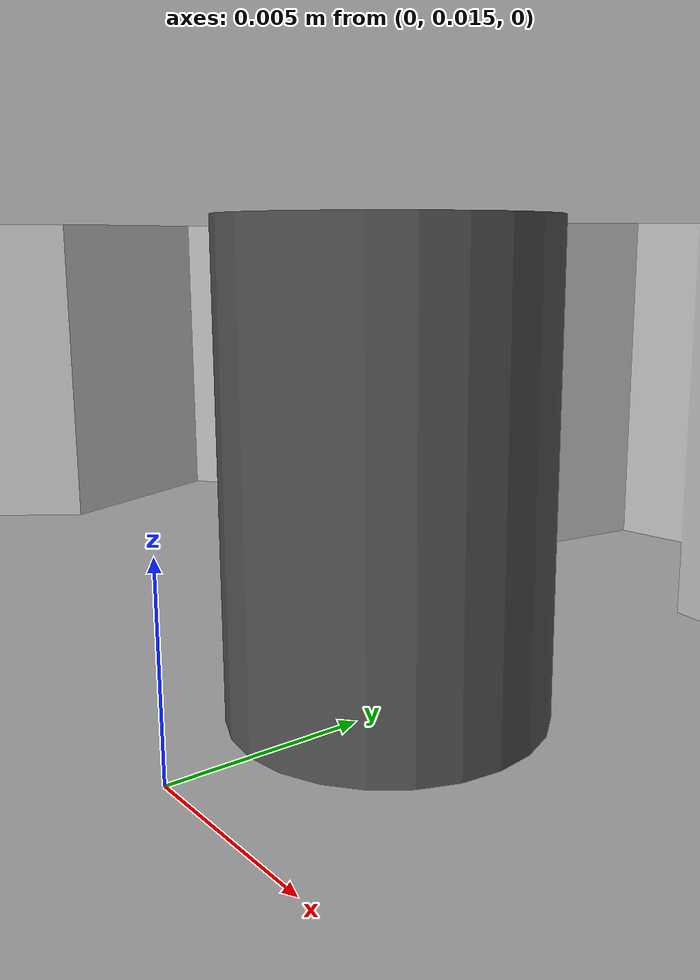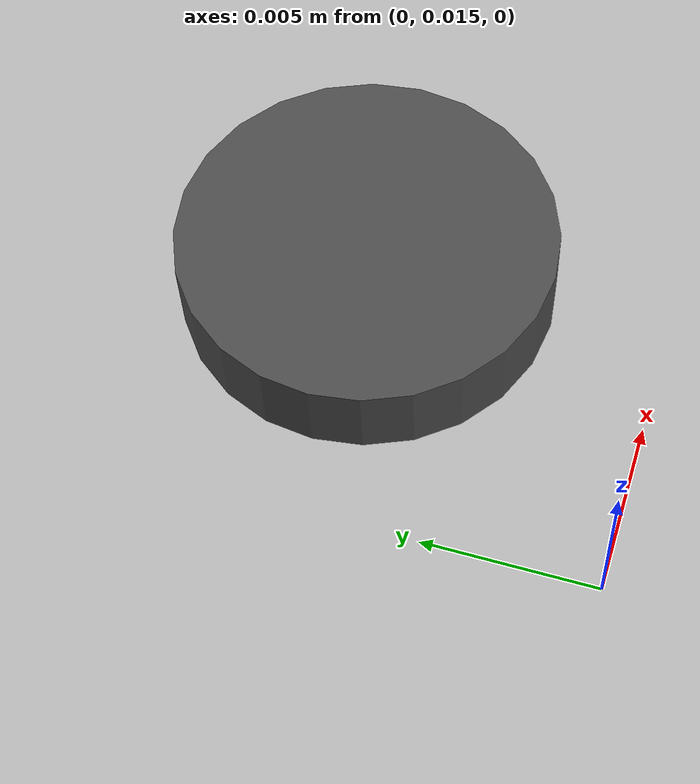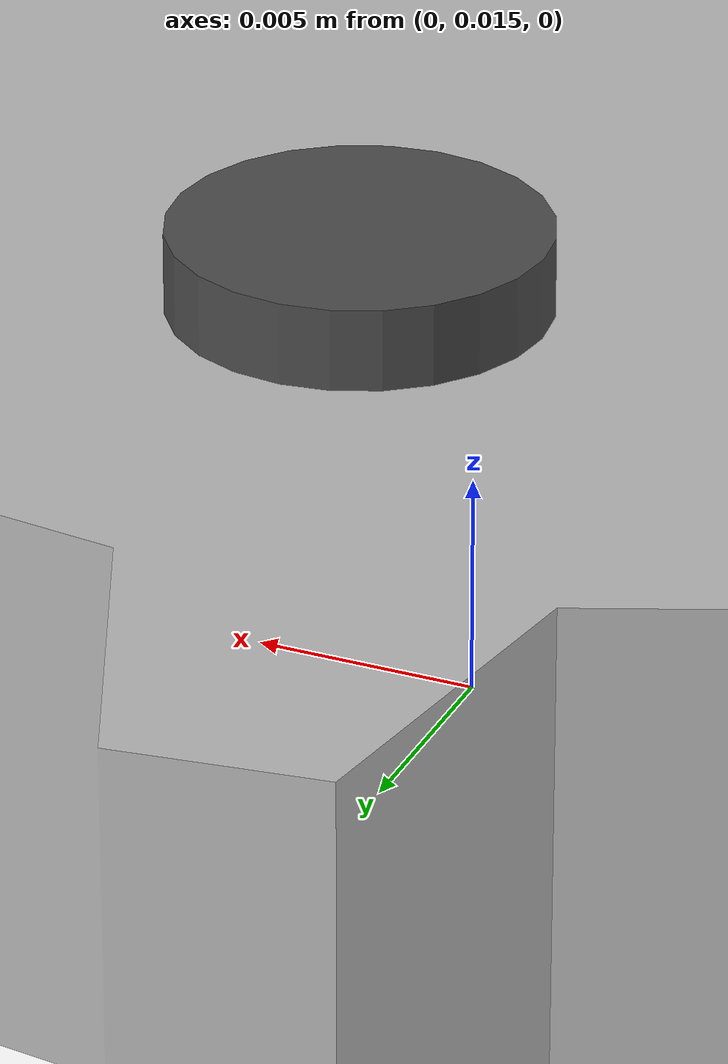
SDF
<?xml version="1.0" ?>
<sdf version="1.6">
  <model name="gear_part">
    <link name="link">
      <inertial>
        <pose>0 0 0.005875 0 0 0</pose>
        <mass>0.5</mass>
        <inertia>
          <ixx>0.00019820251</ixx>
          <ixy>0</ixy>
          <ixz>0</ixz>
          <iyy>0.00019820251</iyy>
          <iyz>0</iyz>
          <izz>0.00038440503</izz>
        </inertia>
      </inertial>

      <collision name="collision">
        <pose>0 0 0.005875 0 0 0</pose>
        <geometry>
          <cylinder>
            <length>0.012</length>
            <radius>0.0392125</radius>
          </cylinder>
        </geometry>
        <surface>
          <contact>
            <ode>
              <max_vel>0.1</max_vel>
              <min_depth>0.001</min_depth>
            </ode>
          </contact>
        </surface>
      </collision>

      <visual name="visual">
         <geometry>
           <mesh>
             <uri>model://gear_part/meshes/gear.dae</uri>
             <scale>0.25 0.25 0.25</scale>
           </mesh>
         </geometry>
        <material>
          <script>
            <uri>model://arm_part/materials/scripts</uri>
            <uri>model://arm_part/materials/textures</uri>
            <name>ArmPart/Diffuse</name>
          </script>
        </material>
       </visual>
    </link>

    <link name="asymmetric_mark">
      <inertial>
        <pose>0 0.021 0.006 0 0 0</pose>
        <mass>0.005</mass>
        <inertia>
          <ixx>0.0000019820251</ixx>
          <ixy>0</ixy>
          <ixz>0</ixz>
          <iyy>0.0000019820251</iyy>
          <iyz>0</iyz>
          <izz>0.0000038440503</izz>
        </inertia>
      </inertial>

      <collision name="collision">
        <pose>0 0.021 0.006 0 0 0</pose>
         <geometry>
          <cylinder>
            <length>0.015</length>
            <radius>0.00392125</radius>
          </cylinder>
         </geometry>
        <surface>
          <contact>
            <ode>
              <max_vel>0.1</max_vel>
              <min_depth>0.001</min_depth>
            </ode>
          </contact>
        </surface>
      </collision>

      <visual name="visual">
        <pose>0 0.021 0.006 0 0 0</pose>
         <geometry>
          <cylinder>
            <length>0.015</length>
            <radius>0.00392125</radius>
          </cylinder>
         </geometry>
        <material>
          <lighting>1</lighting>
          <script>
            <uri>file://media/materials/scripts/gazebo.material</uri>
            <name>Gazebo/DarkGrey</name>
          </script>
          <emissive>0 0 0 1</emissive>
        </material>
      </visual>
    </link>

    <joint name="joint" type="fixed">
      <parent>link</parent>
      <child>asymmetric_mark</child>
    </joint>

  </model>
</sdf>
